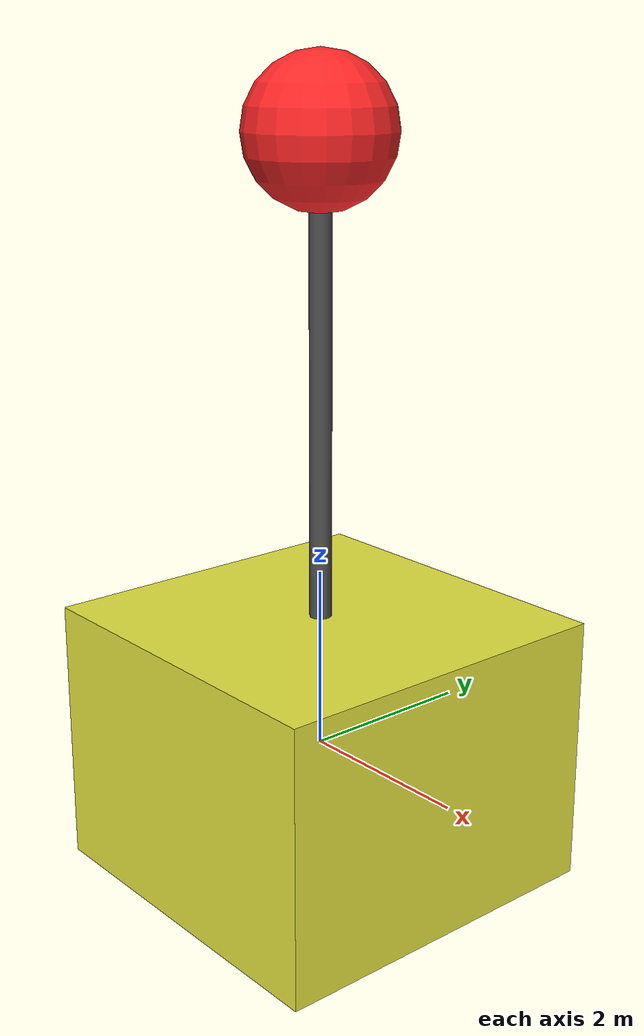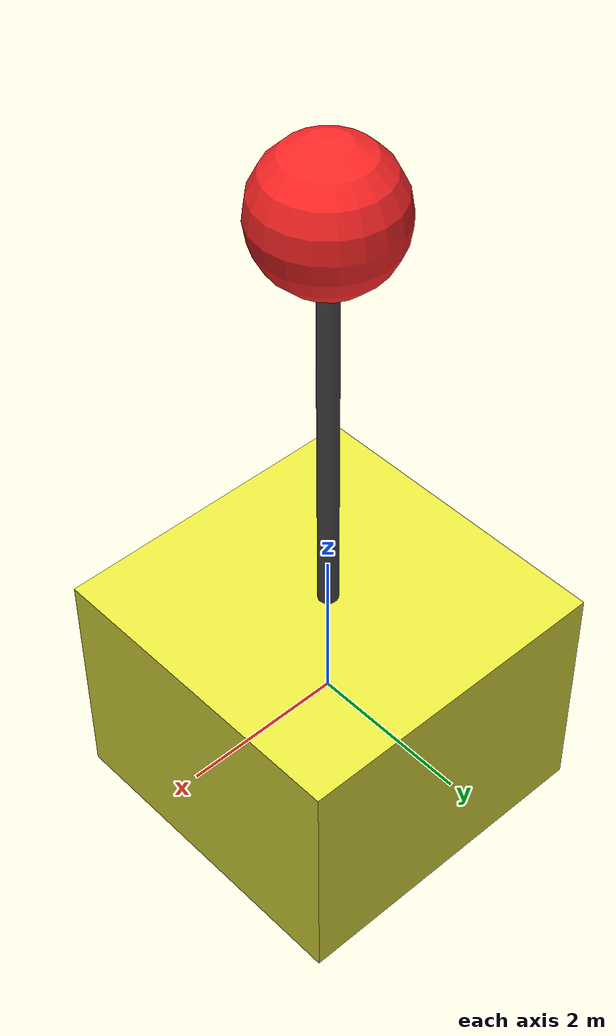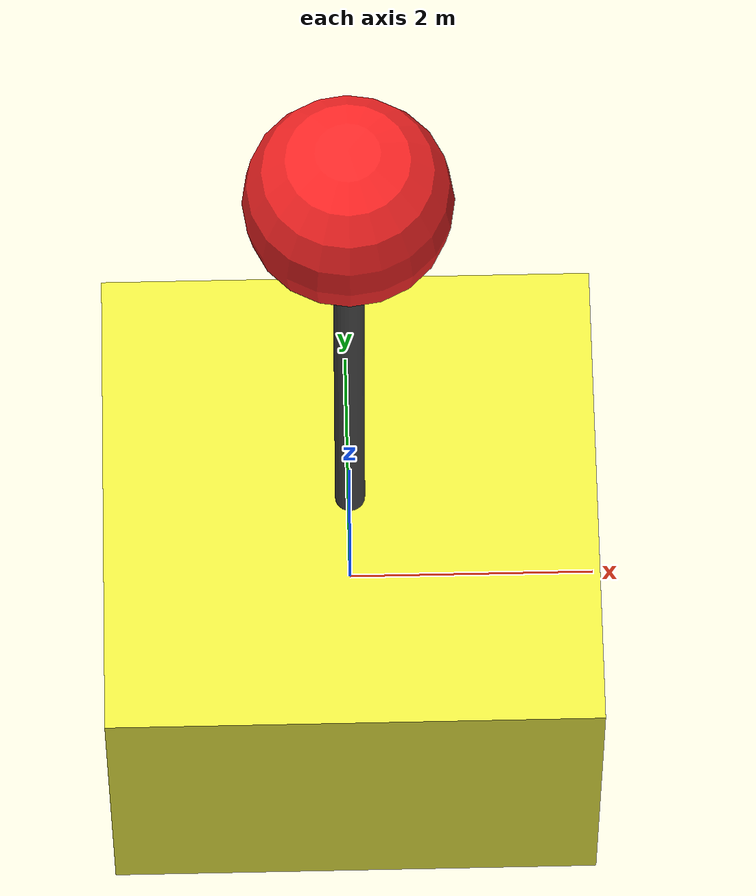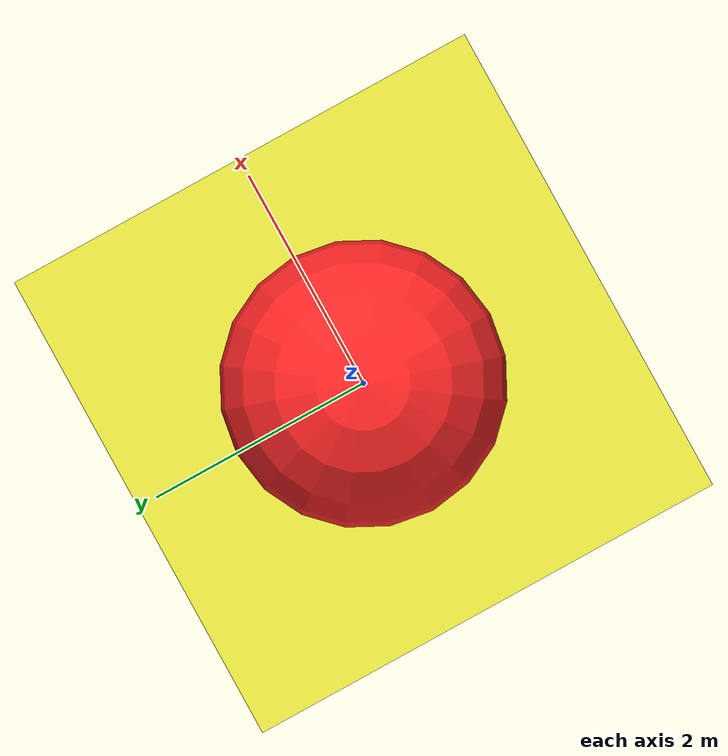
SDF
<?xml version="1.0"?>
<sdf version="1.9">
  <model name="ground_station">
    <static>true</static>
    <link name="base">
      <visual name="hut">
        <geometry><box><size>4 4 3</size></box></geometry>
        <material><ambient>0.85 0.85 0.2 1</ambient><diffuse>0.9 0.9 0.25 1</diffuse></material>
      </visual>
      <visual name="mast">
        <pose>0 0 4.0 0 0 0</pose>
        <geometry><cylinder><radius>0.12</radius><length>5</length></cylinder></geometry>
        <material><ambient>0.2 0.2 0.2 1</ambient><diffuse>0.3 0.3 0.3 1</diffuse></material>
      </visual>
      <visual name="dish">
        <pose>0 0 6.6 0 0 0</pose>
        <geometry><sphere><radius>0.8</radius></sphere></geometry>
        <material><ambient>0.9 0.1 0.1 1</ambient><diffuse>1 0.15 0.15 1</diffuse></material>
      </visual>
      <collision name="c"><geometry><box><size>4 4 3</size></box></geometry></collision>
    </link>
  </model>
</sdf>
